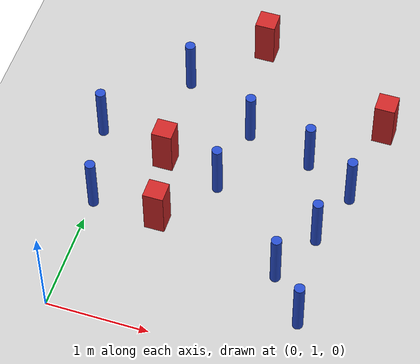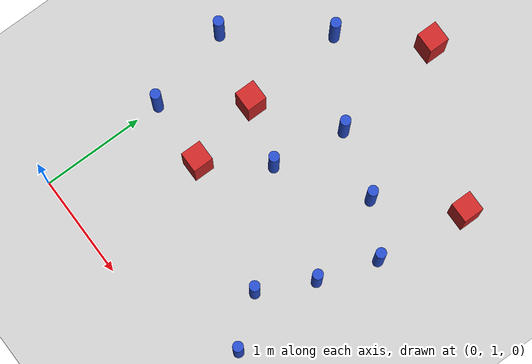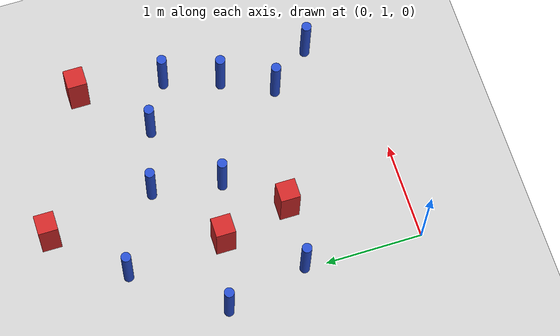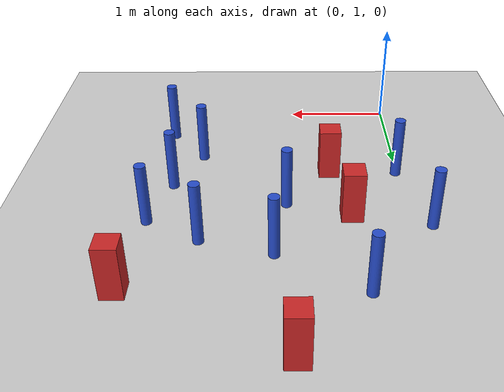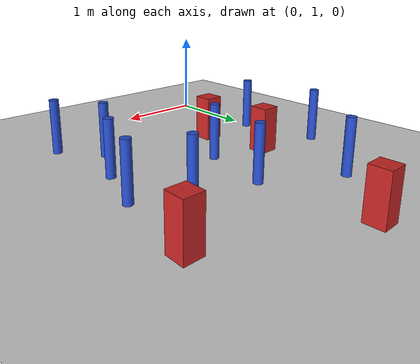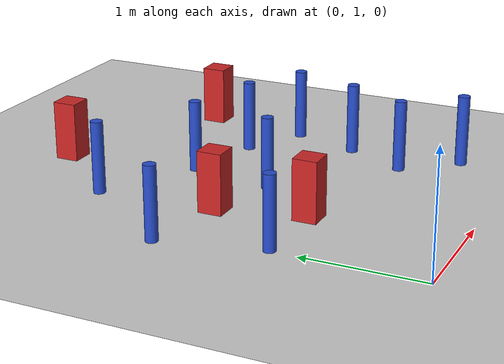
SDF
<sdf version="1.6">
 <world name="default">
  <model name="ground_plane">
   <static>1</static>
   <link name="link">
    <collision name="collision">
     <geometry><plane><normal>0 0 1</normal><size>100 100</size></plane></geometry>
     <surface><friction><ode><mu>100</mu><mu2>50</mu2></ode></friction></surface>
    </collision>
    <visual name="visual">
     <cast_shadows>0</cast_shadows>
     <geometry><plane><normal>0 0 1</normal><size>100 100</size></plane></geometry>
     <material>
      <ambient>1.0 1.0 1.0 1.0</ambient>
      <diffuse>0.8 0.8 0.8 1.0</diffuse>
      <specular>0.01 0.01 0.01 1.000000</specular>
     </material>
    </visual>
   </link>
  </model>
  <model name="pole_obstacle50">
   <static>true</static>
   <pose>0.0156247074044 2.22031036361 7.38925637345e-09 -8.471706928e-08 1.24976765144e-08 -1.74513093012e-07</pose>
   <link name="link">
    <pose>0 0 0.3 0 -0 0</pose>
    <inertial>
     <mass>1</mass>
     <inertia><ixx>0.145833</ixx><ixy>0</ixy><ixz>0</ixz><iyy>0.145833</iyy><iyz>0</iyz><izz>0.125</izz></inertia>
    </inertial>
    <collision name="collision">
     <geometry><cylinder><radius>0.05</radius><length>.6</length></cylinder></geometry>
    </collision>
    <visual name="visual">
     <geometry><cylinder><radius>0.05</radius><length>.6</length></cylinder></geometry>
     <material>
      <script><name>Gazebo/Blue</name><uri>file://media/materials/scripts/gazebo.material</uri></script>
     </material>
    </visual>
   </link>
  </model>
  <model name="pole_obstacle64">
   <static>true</static>
   <pose>1.2109681298 3.44647696807 7.38925637345e-09 -8.47170692799e-08 1.24976765053e-08 -1.74513093017e-07</pose>
   <link name="link">
    <pose>0 0 0.3 0 -0 0</pose>
    <inertial>
     <mass>1</mass>
     <inertia><ixx>0.145833</ixx><ixy>0</ixy><ixz>0</ixz><iyy>0.145833</iyy><iyz>0</iyz><izz>0.125</izz></inertia>
    </inertial>
    <collision name="collision">
     <geometry><cylinder><radius>0.05</radius><length>.6</length></cylinder></geometry>
    </collision>
    <visual name="visual">
     <geometry><cylinder><radius>0.05</radius><length>.6</length></cylinder></geometry>
     <material>
      <script><name>Gazebo/Blue</name><uri>file://media/materials/scripts/gazebo.material</uri></script>
     </material>
    </visual>
   </link>
  </model>
  <model name="pole_obstacle66">
   <static>true</static>
   <pose>1.92843310448 1.91794574649 7.38925637345e-09 -8.471706928e-08 1.24976765079e-08 -1.74513093017e-07</pose>
   <link name="link">
    <pose>0 0 0.3 0 -0 0</pose>
    <inertial>
     <mass>1</mass>
     <inertia><ixx>0.145833</ixx><ixy>0</ixy><ixz>0</ixz><iyy>0.145833</iyy><iyz>0</iyz><izz>0.125</izz></inertia>
    </inertial>
    <collision name="collision">
     <geometry><cylinder><radius>0.05</radius><length>.6</length></cylinder></geometry>
    </collision>
    <visual name="visual">
     <geometry><cylinder><radius>0.05</radius><length>.6</length></cylinder></geometry>
     <material>
      <script><name>Gazebo/Blue</name><uri>file://media/materials/scripts/gazebo.material</uri></script>
     </material>
    </visual>
   </link>
  </model>
  <model name="pole_obstacle77">
   <static>true</static>
   <pose>2.17472826463 2.42791196595 7.38925637345e-09 -8.47170692798e-08 1.24976764939e-08 -1.74513093025e-07</pose>
   <link name="link">
    <pose>0 0 0.3 0 -0 0</pose>
    <inertial>
     <mass>1</mass>
     <inertia><ixx>0.145833</ixx><ixy>0</ixy><ixz>0</ixz><iyy>0.145833</iyy><iyz>0</iyz><izz>0.125</izz></inertia>
    </inertial>
    <collision name="collision">
     <geometry><cylinder><radius>0.05</radius><length>.6</length></cylinder></geometry>
    </collision>
    <visual name="visual">
     <geometry><cylinder><radius>0.05</radius><length>.6</length></cylinder></geometry>
     <material>
      <script><name>Gazebo/Blue</name><uri>file://media/materials/scripts/gazebo.material</uri></script>
     </material>
    </visual>
   </link>
  </model>
  <model name="square_post_obstacle66">
   <static>true</static>
   <pose>0.512603721488 2.9103107442 1.91545236811e-07 -7.35059704564e-06 1.12565212e-07 2.39332434364e-05</pose>
   <link name="link">
    <pose>0 0 0.25 0 -0 0</pose>
    <inertial>
     <mass>100</mass>
     <inertia>
      <ixx>0.166667</ixx>
      <ixy>0</ixy>
      <ixz>0</ixz>
      <iyy>0.166667</iyy>
      <iyz>0</iyz>
      <izz>0.166667</izz>
     </inertia>
    </inertial>
    <collision name="collision"><geometry><box><size>.2 .2 .5</size></box></geometry></collision>
    <visual name="visual">
     <geometry><box><size>.2 .2 .5</size></box></geometry>
     <material>
      <script><name>Gazebo/Red</name><uri>file://media/materials/scripts/gazebo.material</uri></script>
     </material>
    </visual>
   </link>
  </model>
  <model name="square_post_obstacle107">
   <static>true</static>
   <pose>2.46405699083 3.86865727719 1.91545236811e-07 -7.35059704564e-06 1.12565212e-07 2.39332434364e-05</pose>
   <link name="link">
    <pose>0 0 0.25 0 -0 0</pose>
    <inertial>
     <mass>100</mass>
     <inertia>
      <ixx>0.166667</ixx>
      <ixy>0</ixy>
      <ixz>0</ixz>
      <iyy>0.166667</iyy>
      <iyz>0</iyz>
      <izz>0.166667</izz>
     </inertia>
    </inertial>
    <collision name="collision"><geometry><box><size>.2 .2 .5</size></box></geometry></collision>
    <visual name="visual">
     <geometry><box><size>.2 .2 .5</size></box></geometry>
     <material>
      <script><name>Gazebo/Red</name><uri>file://media/materials/scripts/gazebo.material</uri></script>
     </material>
    </visual>
   </link>
  </model>
  <model name="pole_obstacle140">
   <static>true</static>
   <pose>-0.191825169624 3.06724517902 7.38925637345e-09 -8.471706928e-08 1.2497676511e-08 -1.74513093013e-07</pose>
   <link name="link">
    <pose>0 0 0.3 0 -0 0</pose>
    <inertial>
     <mass>1</mass>
     <inertia><ixx>0.145833</ixx><ixy>0</ixy><ixz>0</ixz><iyy>0.145833</iyy><iyz>0</iyz><izz>0.125</izz></inertia>
    </inertial>
    <collision name="collision">
     <geometry><cylinder><radius>0.05</radius><length>.6</length></cylinder></geometry>
    </collision>
    <visual name="visual">
     <geometry><cylinder><radius>0.05</radius><length>.6</length></cylinder></geometry>
     <material>
      <script><name>Gazebo/Blue</name><uri>file://media/materials/scripts/gazebo.material</uri></script>
     </material>
    </visual>
   </link>
  </model>
  <model name="pole_obstacle146">
   <static>true</static>
   <pose>1.86385830138 3.26484523695 7.38925637345e-09 -8.47170692799e-08 1.24976765053e-08 -1.74513093017e-07</pose>
   <link name="link">
    <pose>0 0 0.3 0 -0 0</pose>
    <inertial>
     <mass>1</mass>
     <inertia><ixx>0.145833</ixx><ixy>0</ixy><ixz>0</ixz><iyy>0.145833</iyy><iyz>0</iyz><izz>0.125</izz></inertia>
    </inertial>
    <collision name="collision">
     <geometry><cylinder><radius>0.05</radius><length>.6</length></cylinder></geometry>
    </collision>
    <visual name="visual">
     <geometry><cylinder><radius>0.05</radius><length>.6</length></cylinder></geometry>
     <material>
      <script><name>Gazebo/Blue</name><uri>file://media/materials/scripts/gazebo.material</uri></script>
     </material>
    </visual>
   </link>
  </model>
  <model name="pole_obstacle148">
   <static>true</static>
   <pose>0.442712913147 3.90780176301 7.38925637345e-09 -8.471706928e-08 1.24976765084e-08 -1.74513093017e-07</pose>
   <link name="link">
    <pose>0 0 0.3 0 -0 0</pose>
    <inertial>
     <mass>1</mass>
     <inertia><ixx>0.145833</ixx><ixy>0</ixy><ixz>0</ixz><iyy>0.145833</iyy><iyz>0</iyz><izz>0.125</izz></inertia>
    </inertial>
    <collision name="collision">
     <geometry><cylinder><radius>0.05</radius><length>.6</length></cylinder></geometry>
    </collision>
    <visual name="visual">
     <geometry><cylinder><radius>0.05</radius><length>.6</length></cylinder></geometry>
     <material>
      <script><name>Gazebo/Blue</name><uri>file://media/materials/scripts/gazebo.material</uri></script>
     </material>
    </visual>
   </link>
  </model>
  <model name="pole_obstacle161">
   <static>true</static>
   <pose>1.09783759677 2.7391970682 7.38925637345e-09 -8.47170692799e-08 1.24976765053e-08 -1.74513093017e-07</pose>
   <link name="link">
    <pose>0 0 0.3 0 -0 0</pose>
    <inertial>
     <mass>1</mass>
     <inertia><ixx>0.145833</ixx><ixy>0</ixy><ixz>0</ixz><iyy>0.145833</iyy><iyz>0</iyz><izz>0.125</izz></inertia>
    </inertial>
    <collision name="collision">
     <geometry><cylinder><radius>0.05</radius><length>.6</length></cylinder></geometry>
    </collision>
    <visual name="visual">
     <geometry><cylinder><radius>0.05</radius><length>.6</length></cylinder></geometry>
     <material>
      <script><name>Gazebo/Blue</name><uri>file://media/materials/scripts/gazebo.material</uri></script>
     </material>
    </visual>
   </link>
  </model>
  <model name="square_post_obstacle154">
   <static>true</static>
   <pose>1.04767736695 4.55188773052 1.91545236811e-07 -7.35059704564e-06 1.12565212e-07 2.39332434364e-05</pose>
   <link name="link">
    <pose>0 0 0.25 0 -0 0</pose>
    <inertial>
     <mass>100</mass>
     <inertia>
      <ixx>0.166667</ixx>
      <ixy>0</ixy>
      <ixz>0</ixz>
      <iyy>0.166667</iyy>
      <iyz>0</iyz>
      <izz>0.166667</izz>
     </inertia>
    </inertial>
    <collision name="collision"><geometry><box><size>.2 .2 .5</size></box></geometry></collision>
    <visual name="visual">
     <geometry><box><size>.2 .2 .5</size></box></geometry>
     <material>
      <script><name>Gazebo/Red</name><uri>file://media/materials/scripts/gazebo.material</uri></script>
     </material>
    </visual>
   </link>
  </model>
  <model name="pole_obstacle169">
   <static>true</static>
   <pose>2.27233535893 1.48550547574 7.38925637345e-09 -8.471706928e-08 1.24976765152e-08 -1.74513093012e-07</pose>
   <link name="link">
    <pose>0 0 0.3 0 -0 0</pose>
    <inertial>
     <mass>1</mass>
     <inertia><ixx>0.145833</ixx><ixy>0</ixy><ixz>0</ixz><iyy>0.145833</iyy><iyz>0</iyz><izz>0.125</izz></inertia>
    </inertial>
    <collision name="collision">
     <geometry><cylinder><radius>0.05</radius><length>.6</length></cylinder></geometry>
    </collision>
    <visual name="visual">
     <geometry><cylinder><radius>0.05</radius><length>.6</length></cylinder></geometry>
     <material>
      <script><name>Gazebo/Blue</name><uri>file://media/materials/scripts/gazebo.material</uri></script>
     </material>
    </visual>
   </link>
  </model>
  <model name="pole_obstacle181">
   <static>true</static>
   <pose>2.35123985417 2.99011710825 7.38925637345e-09 -8.47170692798e-08 1.24976764939e-08 -1.74513093025e-07</pose>
   <link name="link">
    <pose>0 0 0.3 0 -0 0</pose>
    <inertial>
     <mass>1</mass>
     <inertia><ixx>0.145833</ixx><ixy>0</ixy><ixz>0</ixz><iyy>0.145833</iyy><iyz>0</iyz><izz>0.125</izz></inertia>
    </inertial>
    <collision name="collision">
     <geometry><cylinder><radius>0.05</radius><length>.6</length></cylinder></geometry>
    </collision>
    <visual name="visual">
     <geometry><cylinder><radius>0.05</radius><length>.6</length></cylinder></geometry>
     <material>
      <script><name>Gazebo/Blue</name><uri>file://media/materials/scripts/gazebo.material</uri></script>
     </material>
    </visual>
   </link>
  </model>
  <model name="square_post_obstacle185">
   <static>true</static>
   <pose>0.675105124929 2.19641881093 1.91545236811e-07 -7.35059704564e-06 1.12565212e-07 2.39332434364e-05</pose>
   <link name="link">
    <pose>0 0 0.25 0 -0 0</pose>
    <inertial>
     <mass>100</mass>
     <inertia>
      <ixx>0.166667</ixx>
      <ixy>0</ixy>
      <ixz>0</ixz>
      <iyy>0.166667</iyy>
      <iyz>0</iyz>
      <izz>0.166667</izz>
     </inertia>
    </inertial>
    <collision name="collision"><geometry><box><size>.2 .2 .5</size></box></geometry></collision>
    <visual name="visual">
     <geometry><box><size>.2 .2 .5</size></box></geometry>
     <material>
      <script><name>Gazebo/Red</name><uri>file://media/materials/scripts/gazebo.material</uri></script>
     </material>
    </visual>
   </link>
  </model>
 </world>
</sdf>
